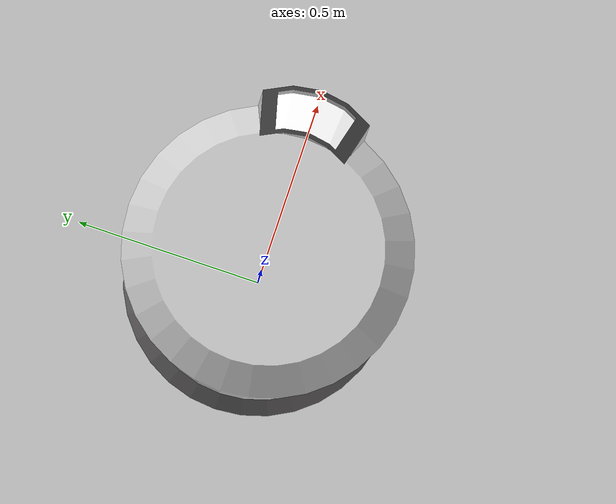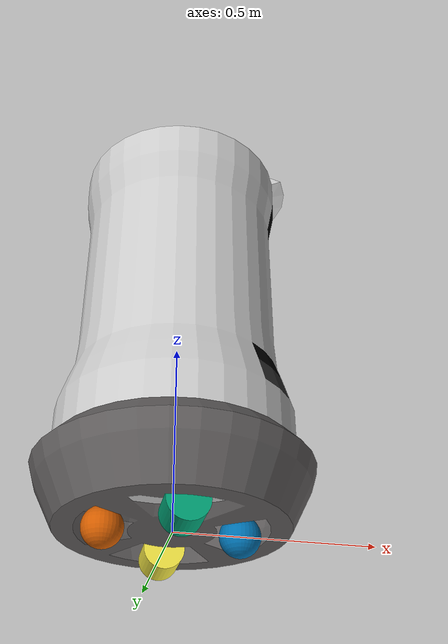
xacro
<?xml version="1.0"?>
<robot name="intel_robot" xmlns:xacro="http://ros.org/wiki/xacro">

<xacro:property name="bodyrad" value="0.1"/>
<xacro:property name="baselen" value="0.1"/>
<xacro:property name="base_mass" value="1"/>
<xacro:property name="toplen" value="0.5"/>
<xacro:property name="top_mass" value="8"/>
<xacro:property name="wheelrad" value="0.025"/>
<xacro:property name="wheelwidth" value="0.025"/>
<xacro:property name="casterrad" value="0.012"/>
<xacro:property name="caster_mass" value="0.2"/>
<xacro:property name="wheel_mass" value="0.2"/>

  <xacro:macro name="sphere_inertia" params ="m r">
  <inertial>
   <mass value="${m}"/>
   <inertia ixx="${m*(r*r*2)/5}"  ixy="0.0" ixz="0.0"
            iyy="${m*(r*r*2)/5}"  iyz= "0.0"
            izz="${m*(r*r*2)/5}"/>
   </inertial>
  </xacro:macro>

  <xacro:macro name="cylinder_inertia" params ="m r h">
  <inertial>
   <mass value="${m}"/>
   <inertia ixx="${m*(3*r*r+h*h)/12}"  ixy="0.0" ixz="0.0"
            iyy="${m*(3*r*r+h*h)/12}"  iyz= "0.0"
            izz="${m*r*r/2}"/>
   </inertial>
  </xacro:macro>

<link name="base_link">
    <visual>
      <geometry>
        <mesh filename="package://intel/meshes/base_link.dae"/>
      </geometry>
      <origin  rpy="0 0 0" xyz="0 0 0" />
     </visual>
    <collision>
      <origin  rpy="0 0 0" xyz="0 0 0"  />
      <geometry>
        <mesh filename="package://intel/meshes/base_link.dae"/>
      </geometry>
   </collision>
</link>

<gazebo reference="base_link">
    <gravity>true</gravity>
    <sensor name="imu_sensor" type="imu">
      <always_on>true</always_on>
      <update_rate>100</update_rate>
      <visualize>true</visualize>
      <topic>__default_topic__</topic>
      <plugin filename="libgazebo_ros_imu_sensor.so" name="imu_plugin">
        <topicName>imu</topicName>
        <bodyName>imu_link</bodyName>
        <updateRateHZ>1000.0</updateRateHZ>
        <gaussianNoise>0.0</gaussianNoise>
        <xyzOffset>0 0 0</xyzOffset>
        <rpyOffset>0 0 0</rpyOffset>
        <frameName>imu_link</frameName>
      </plugin>
      <pose>0 0 0 0 0 0</pose>
    </sensor>
</gazebo>

<link name="top_link">
    <visual>
      <geometry>
        <mesh filename="package://intel/meshes/top_link.dae"/>
      </geometry>
      <origin  rpy="0 0 0" xyz="0 0 0" />
     </visual>
    <collision>
      <origin  rpy="0 0 0" xyz="0 0 0"  />
      <geometry>
        <mesh filename="package://intel/meshes/top_link.dae"/>
      </geometry>
   </collision>
   <xacro:cylinder_inertia m ="8" r="0.28" h="1.68906" />
</link>

<gazebo reference="top_link">
      <gravity value="True"/>
</gazebo>

<joint name="base_to_top" type="fixed">
    <parent link="base_link"/>
    <child link="top_link"/>
    <origin xyz="0 0 0.18906"/>
</joint>

<link name="rwheel_link">
    <visual>
      <geometry>
        <mesh filename="package://intel/meshes/right_wheel.dae"/>
      </geometry>
      <origin  rpy="0 0 0" xyz="0 0 0" />
     </visual>
    <collision>
      <origin  rpy="0 0 0" xyz="0 0 0"  />
      <geometry>
        <mesh filename="package://intel/meshes/right_wheel.dae"/>
      </geometry>
   </collision>
   <xacro:cylinder_inertia m ="0.08" r="0.05" h="0.05" />
</link>

<gazebo reference="rwheel_link">
      <gravity value="True"/>
      <surface>
        <friction>
          <ode>
            <mu>1</mu>
            <mu2>1</mu2>
            <slip1>0</slip1>
            <slip2>0</slip2>
          </ode>
        </friction>
      </surface>
</gazebo>

<joint name="scooter_right_wheel_joint" type="continuous">
    <axis xyz="0 1 0" rpy="0 0 0" />
    <dynamics damping="0.0" friction="0.0"/>
    <!-- since we have wheel radius = 0.05 meters and max linear speed 2.5 m/s
     thus max angular velocity of  wheel is w = v/r = 50  -->
    <limit effort="10" velocity="50"/>
    <parent link="base_link"/>
    <child link="rwheel_link"/>
    <origin xyz="0 -0.16189 0"/>
</joint>

 <transmission name="scooter_right_wheel_trans">
    <type>transmission_interface/SimpleTransmission</type>
    <actuator name="scooter_right_wheel_motor">
    <hardwareInterface>EffortJointInterface</hardwareInterface>
      <mechanicalReduction>1</mechanicalReduction>
    </actuator>
    <joint name="scooter_right_wheel_joint">
    <hardwareInterface>hardware_interface/VelocityJointInterface</hardwareInterface>
    </joint>
  </transmission>

<link name="lwheel_link">
    <visual>
      <geometry>
        <mesh filename="package://intel/meshes/left_wheel.dae"/>
      </geometry>
      <origin  rpy="0 0 0" xyz="0 0 0" />
     </visual>
    <collision>
      <origin  rpy="0 0 0" xyz="0 0 0"  />
      <geometry>
        <mesh filename="package://intel/meshes/left_wheel.dae"/>
      </geometry>
   </collision>
   <xacro:cylinder_inertia m ="0.08" r="0.05" h="0.05" />
</link>

<gazebo reference="lwheel_link">
      <gravity value="True"/>
      <surface>
        <friction>
          <ode>
            <mu>1</mu>
            <mu2>1</mu2>
            <slip1>0</slip1>
            <slip2>0</slip2>
          </ode>
        </friction>
      </surface>
</gazebo>

<joint name="scooter_left_wheel_joint" type="continuous">
    <axis xyz="0 1 0" rpy="0 0 0" />
    <dynamics damping="0.0" friction="0.0"/>
    <!-- since we have wheel radius = 0.05 meters and max linear speed 2.5 m/s
     thus max angular velocity of  wheel is w = v/r = 50  -->
    <limit effort="10" velocity="50"/>
    <parent link="base_link"/>
    <child link="lwheel_link"/>
    <origin xyz="0 0.16189 0"/>
</joint>

 <transmission name="scooter_left_wheel_trans">
    <type>transmission_interface/SimpleTransmission</type>
    <actuator name="scooter_left_wheel_motor">
    <hardwareInterface>EffortJointInterface</hardwareInterface>
      <mechanicalReduction>1</mechanicalReduction>
    </actuator>
    <joint name="scooter_left_wheel_joint">
    <hardwareInterface>hardware_interface/VelocityJointInterface</hardwareInterface>
    </joint>
  </transmission>

<link name="fcaster_link">
    <visual>
      <geometry>
        <mesh filename="package://intel/meshes/front_caster.dae"/>
      </geometry>
      <origin  rpy="0 0 0" xyz="0 0 0" />
     </visual>
    <collision>
      <origin  rpy="0 0 0" xyz="0 0 0"  />
      <geometry>
        <mesh filename="package://intel/meshes/front_caster.dae"/>
      </geometry>
   </collision>
   <xacro:sphere_inertia m ="0.08" r="0.05" />
</link>

<gazebo reference="fcaster_link">
      <gravity value="True"/>
      <surface>
        <friction>
          <ode>
            <mu>0.0</mu>
            <mu2>0.0</mu2>
            <slip1>1.0</slip1>
            <slip2>1.0</slip2>
          </ode>
        </friction>
      </surface>
</gazebo>

<joint name="caster_front_wheel_joint" type="fixed">
    <dynamics damping="0.0" friction="0.0"/>
    <parent link="base_link"/>
    <child link="fcaster_link"/>
    <origin xyz="0.16189 0 0.0008"/>
</joint>

<link name="bcaster_link">
    <visual>
      <geometry>
        <mesh filename="package://intel/meshes/back_caster.dae"/>
      </geometry>
      <origin  rpy="0 0 0" xyz="0 0 0" />
     </visual>
    <collision>
      <origin  rpy="0 0 0" xyz="0 0 0"  />
      <geometry>
        <mesh filename="package://intel/meshes/back_caster.dae"/>
      </geometry>
   </collision>
   <xacro:sphere_inertia m ="0.08" r="0.05" />
</link>

<gazebo reference="bcaster_link">
      <gravity value="True"/>
      <surface>
        <friction>
          <ode>
            <mu>0.0</mu>
            <mu2>0.0</mu2>
            <slip1>1.0</slip1>
            <slip2>1.0</slip2>
          </ode>
        </friction>
      </surface>
</gazebo>

<joint name="caster_back_wheel_joint" type="fixed">
    <dynamics damping="0.0" friction="0.0"/>
    <parent link="base_link"/>
    <child link="bcaster_link"/>
    <origin xyz="-0.16189 0 0.0008"/>
</joint>

<gazebo>
    <plugin name="gazebo_ros_control" filename="libgazebo_ros_control.so">
      <robotNamespace>/</robotNamespace>
      <robotSimType>gazebo_ros_control/DefaultRobotHWSim</robotSimType>
    </plugin>
  </gazebo>

</robot>
